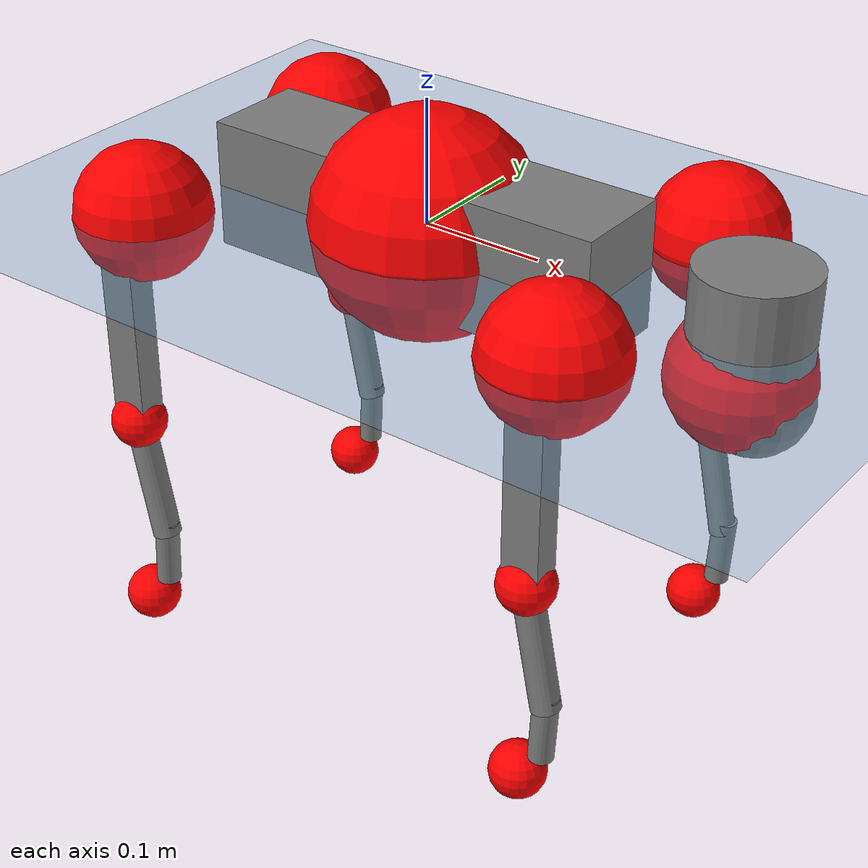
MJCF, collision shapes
<mujoco model="go2">
  <compiler angle="radian" assetdir="assets" balanceinertia="true" inertiafromgeom="false"/>

  <option timestep="0.005" density="1.2" viscosity="2e-05"/>

  <size nkey="1"/>

  <visual>
    <quality shadowsize="8192"/>
    <map shadowclip="0.5"/>
  </visual>

  <default>
    <default class="/">
      <geom contype="0" conaffinity="0" group="1" solref="-1000 -80"/>
      <site size="0.01 0.005 0.005" group="5"/>
      <general forcelimited="true" biastype="affine" gainprm="20" biasprm="0 -20 -0.5"/>
      <default class="go2">
        <joint armature="0.01" damping="0.01" frictionloss="0.2"/>
        <geom condim="1" margin="0.001"/>
        <default class="visual">
          <geom type="mesh" group="2"/>
        </default>
        <default class="collision">
          <geom group="3"/>
          <default class="foot">
            <geom size="0.022 0 0" condim="6" priority="1" friction="0.8 0.02 0.01" solimp="0.015 1 0.022"/>
          </default>
        </default>
        <default class="reward_collision_sphere">
          <geom group="5" rgba="1 0 0 1"/>
        </default>
      </default>
    </default>
  </default>

  <asset>
    <texture type="skybox" colorspace="auto" name="//unnamed_texture_0" builtin="gradient" rgb1="0.95 0.95 0.95" rgb2="0.95 0.95 0.95" width="100" height="600"/>
    <texture type="2d" colorspace="auto" name="texplane" builtin="checker" rgb1="0.345 0.575 0.748" rgb2="0.345 0.575 0.748" markrgb="1 1 1" width="512" height="512"/>
    <material name="MatPlane" class="/" texture="texplane" texuniform="true" texrepeat="2 2" specular="0.9"/>
    <material name="metal" class="/" rgba="0.9 0.95 0.95 1"/>
    <material name="black" class="/" rgba="0 0 0 1"/>
    <material name="white" class="/"/>
    <material name="gray" class="/" rgba="0.671705 0.692426 0.77427 1"/>
    <mesh name="base_0" class="/" file="base_0.obj"/>
    <mesh name="base_1" class="/" file="base_1.obj"/>
    <mesh name="base_2" class="/" file="base_2.obj"/>
    <mesh name="base_3" class="/" file="base_3.obj"/>
    <mesh name="base_4" class="/" file="base_4.obj"/>
    <mesh name="hip_0" class="/" file="hip_0.obj"/>
    <mesh name="hip_1" class="/" file="hip_1.obj"/>
    <mesh name="thigh_0" class="/" file="thigh_0.obj"/>
    <mesh name="thigh_1" class="/" file="thigh_1.obj"/>
    <mesh name="thigh_mirror_0" class="/" file="thigh_mirror_0.obj"/>
    <mesh name="thigh_mirror_1" class="/" file="thigh_mirror_1.obj"/>
    <mesh name="calf_0" class="/" file="calf_0.obj"/>
    <mesh name="calf_1" class="/" file="calf_1.obj"/>
    <mesh name="calf_mirror_0" class="/" file="calf_mirror_0.obj"/>
    <mesh name="calf_mirror_1" class="/" file="calf_mirror_1.obj"/>
    <mesh name="foot" class="/" file="foot.obj"/>
  </asset>

  <worldbody>
    <geom name="floor" class="/" size="100 100 0.125" type="plane" group="0" material="MatPlane"/>
    <light name="toplight_shadow" class="/" pos="0 0 5" dir="0.0990148 0.0990148 -0.990148" type="directional" ambient="0.04 0.04 0.04" diffuse="0.55 0.55 0.55" specular="0.12 0.12 0.12"/>
    <light name="toplight_fill" class="/" pos="0 0 5" dir="0.0990148 0.0990148 -0.990148" type="directional" castshadow="false" ambient="0.04 0.04 0.04" diffuse="0.3 0.3 0.3" specular="0.08 0.08 0.08"/>
    <body name="trunk" childclass="go2" pos="-0.000213779 -3.36584e-05 0.000838992" quat="1 -5.94336e-07 -1.82632e-05 -3.46092e-06">
      <inertial pos="0.0207787 0.000216445 -0.00497623" quat="-0.000529021 0.713369 -0.00170721 0.700786" mass="5.10213" diaginertia="0.0874848 0.0745585 0.00865721"/>
      <joint name="//unnamed_joint_0" type="free" armature="0" damping="0" frictionloss="0"/>
      <geom name="//unnamed_geom_1" class="visual" material="black" mesh="base_0"/>
      <geom name="//unnamed_geom_2" class="visual" material="black" mesh="base_1"/>
      <geom name="//unnamed_geom_3" class="visual" material="black" mesh="base_2"/>
      <geom name="//unnamed_geom_4" class="visual" material="white" mesh="base_3"/>
      <geom name="//unnamed_geom_5" class="visual" material="gray" mesh="base_4"/>
      <geom name="trunk_1" class="collision" size="0.170728 0.0424325 0.0517359" type="box"/>
      <geom name="trunk_2" class="collision" size="0.0453823 0.0408441" pos="0.274324 0 0.00812977" type="cylinder"/>
      <geom name="trunk_3" class="collision" size="0.0426594" pos="0.282025 0 -0.0487786"/>
      <geom name="//unnamed_geom_9" class="reward_collision_sphere" size="0.0907647"/>
      <geom name="//unnamed_geom_10" class="reward_collision_sphere" size="0.0544588" pos="0.269512 0 -0.036584"/>
      <site name="imu" pos="-0.0280069 -0.000992059 0.03375" size="0.00907647"/>
      <camera name="track" pos="0 -1.89484 0" quat="0.707107 0.707107 0 0" mode="trackcom"/>
      <camera name="ego_camera" pos="0.300313 0 0.036584" quat="-0.5 -0.5 0.5 0.5"/>
      <body name="FL_hip" pos="0.186287 0.0438349 0.00221918" quat="1 1.74716e-05 -2.84474e-05 4.21272e-05">
        <inertial pos="-0.00508453 0.00250544 0.00014118" quat="0.500405 0.498675 0.505454 0.495412" mass="0.507521" diaginertia="0.000729839 0.000454685 0.000171004"/>
        <joint name="FL_hip_joint" pos="0 0 0" axis="0.999995 -0.00254531 0.0017474" range="-1.04344 1.03218" armature="0.00923184" damping="0.00187332" frictionloss="0.177666"/>
        <geom name="//unnamed_geom_11" class="visual" material="metal" mesh="hip_0"/>
        <geom name="//unnamed_geom_12" class="visual" material="gray" mesh="hip_1"/>
        <geom name="//unnamed_geom_13" class="collision" size="0.0417517 0.0181529" pos="0 0.0757937 0" quat="0.707107 0.707107 0 0" type="cylinder"/>
        <geom name="//unnamed_geom_14" class="reward_collision_sphere" size="0.0544588" pos="0 0.0663194 0"/>
        <body name="FL_thigh" pos="-0.000370654 0.0893662 0.00161744" quat="1 0.000173806 6.5517e-05 0.000268084">
          <inertial pos="-0.00431995 -0.0210456 -0.0264894" quat="0.830243 0.0837988 -0.0208343 0.550672" mass="0.848409" diaginertia="0.00489207 0.00443999 0.000309239"/>
          <joint name="FL_thigh_joint" pos="0 0 0" axis="-0.000452518 0.999999 0.00115303" stiffness="0.00396166" range="-1.5779 3.50152" armature="0.00924262" damping="0.00542012" frictionloss="0.182601"/>
          <geom name="//unnamed_geom_15" class="visual" material="metal" mesh="thigh_0"/>
          <geom name="//unnamed_geom_16" class="visual" material="gray" mesh="thigh_1"/>
          <geom name="//unnamed_geom_17" class="collision" size="0.0966644 0.0111187 0.01543" pos="0 0 -0.0865821" quat="0.707107 0 0.707107 0" type="box"/>
          <body name="FL_calf" pos="-0.00148197 -0.000847682 -0.173702" quat="1 -0.000115534 0.00012404 0.000310368">
            <inertial pos="0.0057366 -0.000316573 -0.114705" quat="0.711818 0.00195834 -0.00326882 0.702353" mass="0.182742" diaginertia="0.00124427 0.00111941 1.89484e-05"/>
            <joint name="FL_calf_joint" pos="0 0 0" axis="-0.00554125 0.999985 0.000157107" stiffness="0.00206845" range="-2.70617 -0.842647" armature="0.00867534" damping="0.00391362" frictionloss="0.173485"/>
            <geom name="//unnamed_geom_18" class="visual" material="gray" mesh="calf_0"/>
            <geom name="//unnamed_geom_19" class="visual" material="black" mesh="calf_1"/>
            <geom name="FL_calf0" class="collision" size="0.0108918 0.0544588" pos="0.00770034 0 -0.0487786" quat="0.994493 0 -0.104807 0" type="cylinder"/>
            <geom name="//unnamed_geom_21" class="collision" size="0.00998411 0.0294985" pos="0.0192508 0 -0.120321" quat="0.999688 0 0.0249974 0" type="cylinder"/>
            <geom name="//unnamed_geom_22" class="visual" pos="0 0 -0.173164" quat="1 0 0 0" material="black" mesh="foot"/>
            <geom name="FL_foot" class="foot" size="0.0175412" pos="-0.00192508 0 -0.173164"/>
            <geom name="//unnamed_geom_24" class="reward_collision_sphere" size="0.0226912"/>
            <geom name="//unnamed_geom_25" class="reward_collision_sphere" size="0.0226912" pos="-0.00192508 0 -0.173164"/>
            <site name="FL_foot" class="foot" pos="-0.00192508 0 -0.173164" size="0.00907647"/>
          </body>
        </body>
      </body>
      <body name="FR_hip" pos="0.187631 -0.0431262 1.42082e-05" quat="1 -1.24141e-06 -9.02461e-06 5.60558e-06">
        <inertial pos="-0.00518344 -0.00157719 -0.000591934" quat="0.498196 0.50465 0.49986 0.497262" mass="0.498499" diaginertia="0.000726745 0.000444974 0.000168601"/>
        <joint name="FR_hip_joint" pos="0 0 0" axis="0.999998 -0.00164001 0.000652445" stiffness="0.00323424" range="-1.04889 1.05343" armature="0.00918736" damping="0.0137176" frictionloss="0.182428"/>
        <geom name="//unnamed_geom_26" class="visual" pos="0 1.17122e-09 5.02359e-08" quat="4.63268e-05 1 0 0" material="metal" mesh="hip_0"/>
        <geom name="//unnamed_geom_27" class="visual" pos="0 1.89868e-09 -1.24253e-07" quat="4.63268e-05 1 0 0" material="gray" mesh="hip_1"/>
        <geom name="//unnamed_geom_28" class="collision" size="0.0417517 0.0181529" pos="0 -0.0757937 0" quat="0.707107 0.707107 0 0" type="cylinder"/>
        <geom name="//unnamed_geom_29" class="reward_collision_sphere" size="0.0544588" pos="0 -0.0663194 0"/>
        <body name="FR_thigh" pos="0.000863557 -0.0900477 0.00108421" quat="1 -0.000142375 0.000126258 -0.000108713">
          <inertial pos="-0.00344818 0.0214438 -0.0262771" quat="0.55146 -0.0200521 0.0835648 0.829763" mass="0.865668" diaginertia="0.00494526 0.00444572 0.0003123"/>
          <joint name="FR_thigh_joint" pos="0 0 0" axis="0.000163748 -1 -0.000619456" range="-3.47951 1.55332" armature="0.00911916" damping="0.0106886" frictionloss="0.191162"/>
          <geom name="//unnamed_geom_30" class="visual" material="metal" mesh="thigh_mirror_0"/>
          <geom name="//unnamed_geom_31" class="visual" material="gray" mesh="thigh_mirror_1"/>
          <geom name="//unnamed_geom_32" class="collision" size="0.0966644 0.0111187 0.01543" pos="0 0 -0.0865821" quat="0.707107 0 0.707107 0" type="box"/>
          <body name="FR_calf" pos="-0.000234424 -0.000496017 -0.172699" quat="1 -2.66989e-05 9.31093e-05 5.92494e-05">
            <inertial pos="0.00607246 0.00102491 -0.115124" quat="0.704497 -0.0025274 -0.00212112 0.709699" mass="0.17956" diaginertia="0.00122077 0.00112311 1.87779e-05"/>
            <joint name="FR_calf_joint" pos="0 0 0" axis="-0.00260241 -0.999996 -0.00131918" range="0.853578 2.7048" armature="0.00901831" damping="0.00930904" frictionloss="0.177523"/>
            <geom name="//unnamed_geom_33" class="visual" material="gray" mesh="calf_mirror_0"/>
            <geom name="//unnamed_geom_34" class="visual" material="black" mesh="calf_mirror_1"/>
            <geom name="FR_calf0" class="collision" size="0.0117994 0.0544588" pos="0.00962542 0 -0.0487786" quat="0.995004 0 -0.0998334 0" type="cylinder"/>
            <geom name="//unnamed_geom_36" class="collision" size="0.00998411 0.0294985" pos="0.0192508 0 -0.120321" quat="0.999688 0 0.0249974 0" type="cylinder"/>
            <geom name="//unnamed_geom_37" class="visual" pos="0 0 -0.173164" quat="1 0 0 0" material="black" mesh="foot"/>
            <geom name="FR_foot" class="foot" size="0.0203885" pos="-0.00192508 0 -0.173164"/>
            <geom name="//unnamed_geom_39" class="reward_collision_sphere" size="0.0226912"/>
            <geom name="//unnamed_geom_40" class="reward_collision_sphere" size="0.0226912" pos="-0.00192508 0 -0.173164"/>
            <site name="FR_foot" class="foot" pos="-0.00192508 0 -0.173164" size="0.00907647"/>
          </body>
        </body>
      </body>
      <body name="RL_hip" pos="-0.186842 0.0436564 -0.00022083" quat="1 0.000209974 6.77031e-05 -2.74484e-05">
        <inertial pos="0.00465865 0.00233569 -0.000319715" quat="0.501893 0.498164 0.499425 0.50051" mass="0.504417" diaginertia="0.000733384 0.000459581 0.000171407"/>
        <joint name="RL_hip_joint" pos="0 0 0" axis="-0.999795 0.0114981 -0.0166814" range="-1.05032 1.02537" armature="0.00909487" damping="0.0160749" frictionloss="0.183011"/>
        <geom name="//unnamed_geom_41" class="visual" pos="-1.30295e-09 0 -2.55408e-07" quat="4.63268e-05 0 1 0" material="metal" mesh="hip_0"/>
        <geom name="//unnamed_geom_42" class="visual" pos="-2.11223e-09 0 -2.2651e-07" quat="4.63268e-05 0 1 0" material="gray" mesh="hip_1"/>
        <geom name="//unnamed_geom_43" class="collision" size="0.0417517 0.0181529" pos="0 0.0757937 0" quat="0.707107 0.707107 0 0" type="cylinder"/>
        <geom name="//unnamed_geom_44" class="reward_collision_sphere" size="0.0544588" pos="0 0.0663194 0"/>
        <body name="RL_thigh" pos="0.000888202 0.0893944 -0.00105012" quat="1 8.90553e-06 1.00933e-05 -7.82252e-06">
          <inertial pos="-0.00349892 -0.021397 -0.0267782" quat="0.829171 0.0839692 -0.0192938 0.552316" mass="0.860656" diaginertia="0.00491844 0.00450855 0.000312941"/>
          <joint name="RL_thigh_joint" pos="0 0 0" axis="0.0015046 0.999998 0.00111139" range="-0.519362 4.53665" armature="0.00941348" damping="0.0117509" frictionloss="0.180903"/>
          <geom name="//unnamed_geom_45" class="visual" material="metal" mesh="thigh_0"/>
          <geom name="//unnamed_geom_46" class="visual" material="gray" mesh="thigh_1"/>
          <geom name="//unnamed_geom_47" class="collision" size="0.0966644 0.0111187 0.01543" pos="0 0 -0.0865821" quat="0.707107 0 0.707107 0" type="box"/>
          <body name="RL_calf" pos="0.00120346 0.000152631 -0.173067" quat="1 2.44812e-05 0.000199284 -8.87003e-05">
            <inertial pos="0.00610416 -0.00053332 -0.11463" quat="0.711282 -0.000969488 -0.00865475 0.702853" mass="0.180475" diaginertia="0.00122588 0.00111749 1.86954e-05"/>
            <joint name="RL_calf_joint" pos="0 0 0" axis="0.00765578 0.999937 -0.00821769" stiffness="0.000329036" range="-2.71865 -0.834931" armature="0.00936347" damping="0.00263336" frictionloss="0.173597"/>
            <geom name="//unnamed_geom_48" class="visual" material="gray" mesh="calf_0"/>
            <geom name="//unnamed_geom_49" class="visual" material="black" mesh="calf_1"/>
            <geom name="RL_calf0" class="collision" size="0.0117994 0.0544588" pos="0.00962542 0 -0.0487786" quat="0.995004 0 -0.0998334 0" type="cylinder"/>
            <geom name="//unnamed_geom_51" class="collision" size="0.00998411 0.0294985" pos="0.0192508 0 -0.120321" quat="0.999688 0 0.0249974 0" type="cylinder"/>
            <geom name="//unnamed_geom_52" class="visual" pos="0 0 -0.173164" quat="1 0 0 0" material="black" mesh="foot"/>
            <geom name="RL_foot" class="foot" size="0.0181601" pos="-0.00192508 0 -0.173164"/>
            <geom name="//unnamed_geom_54" class="reward_collision_sphere" size="0.0226912"/>
            <geom name="//unnamed_geom_55" class="reward_collision_sphere" size="0.0226912" pos="-0.00192508 0 -0.173164"/>
            <site name="RL_foot" class="foot" pos="-0.00192508 0 -0.173164" size="0.00907647"/>
          </body>
        </body>
      </body>
      <body name="RR_hip" pos="-0.186369 -0.0451693 -0.00185215" quat="1 0.000126672 -0.00014506 -0.000165739">
        <inertial pos="0.0049154 -0.00194848 -0.000232041" quat="0.500381 0.497094 0.496867 0.505609" mass="0.511972" diaginertia="0.000736967 0.000458653 0.000170979"/>
        <joint name="RR_hip_joint" pos="0 0 0" axis="-0.999999 0.00110765 0.000715218" stiffness="0.00247581" range="-1.03939 1.06066" armature="0.00909892" damping="0.00681177" frictionloss="0.180169"/>
        <geom name="//unnamed_geom_56" class="visual" pos="1.30242e-09 1.17122e-09 -3.05644e-07" quat="2.14617e-09 4.63268e-05 4.63268e-05 -1" material="metal" mesh="hip_0"/>
        <geom name="//unnamed_geom_57" class="visual" pos="2.11353e-09 1.89868e-09 -1.02258e-07" quat="2.14617e-09 4.63268e-05 4.63268e-05 -1" material="gray" mesh="hip_1"/>
        <geom name="//unnamed_geom_58" class="collision" size="0.0417517 0.0181529" pos="0 -0.0757937 0" quat="0.707107 0.707107 0 0" type="cylinder"/>
        <geom name="//unnamed_geom_59" class="reward_collision_sphere" size="0.0544588" pos="0 -0.0663194 0"/>
        <body name="RR_thigh" pos="0.000266316 -0.0903935 -0.000943805" quat="1 0.000104678 -0.00024935 -0.000244005">
          <inertial pos="-0.00427915 0.0207829 -0.0261975" quat="0.551522 -0.020059 0.0844842 0.829628" mass="0.84654" diaginertia="0.00487993 0.00440419 0.000310567"/>
          <joint name="RR_thigh_joint" pos="0 0 0" axis="0.00182956 -0.999986 -0.00490745" range="-4.54238 0.521427" armature="0.00922808" damping="0.0162207" frictionloss="0.181027"/>
          <geom name="//unnamed_geom_60" class="visual" material="metal" mesh="thigh_mirror_0"/>
          <geom name="//unnamed_geom_61" class="visual" material="gray" mesh="thigh_mirror_1"/>
          <geom name="//unnamed_geom_62" class="collision" size="0.0966644 0.0111187 0.01543" pos="0 0 -0.0865821" quat="0.707107 0 0.707107 0" type="box"/>
          <body name="RR_calf" pos="0.000676139 -0.00129568 -0.173747" quat="1 0.000135699 0.000248684 -0.000348638">
            <inertial pos="0.00621671 0.000620807 -0.115443" quat="0.702907 -0.00468963 0.00312517 0.71126" mass="0.179885" diaginertia="0.00123996 0.00110722 1.87682e-05"/>
            <joint name="RR_calf_joint" pos="0 0 0" axis="-0.00413947 -0.999991 -0.000522757" range="0.829382 2.72132" armature="0.00885914" damping="0.00842377" frictionloss="0.181834"/>
            <geom name="//unnamed_geom_63" class="visual" material="gray" mesh="calf_mirror_0"/>
            <geom name="//unnamed_geom_64" class="visual" material="black" mesh="calf_mirror_1"/>
            <geom name="RR_calf0" class="collision" size="0.0117994 0.0544588" pos="0.00962542 0 -0.0487786" quat="0.995004 0 -0.0998334 0" type="cylinder"/>
            <geom name="//unnamed_geom_66" class="collision" size="0.00998411 0.0294985" pos="0.0192508 0 -0.120321" quat="0.999688 0 0.0249974 0" type="cylinder"/>
            <geom name="//unnamed_geom_67" class="visual" pos="0 0 -0.173164" quat="1 0 0 0" material="black" mesh="foot"/>
            <geom name="RR_foot" class="foot" size="0.021957" pos="-0.00192508 0 -0.173164"/>
            <geom name="//unnamed_geom_69" class="reward_collision_sphere" size="0.0226912"/>
            <geom name="//unnamed_geom_70" class="reward_collision_sphere" size="0.0226912" pos="-0.00192508 0 -0.173164"/>
            <site name="RR_foot" class="foot" pos="-0.00192508 0 -0.173164" size="0.00907647"/>
          </body>
        </body>
      </body>
    </body>
  </worldbody>

  <contact>
    <pair class="/" geom1="floor" geom2="FL_foot" name="//unnamed_contact_0"/>
    <pair class="/" geom1="floor" geom2="FR_foot" name="//unnamed_contact_1"/>
    <pair class="/" geom1="floor" geom2="RL_foot" name="//unnamed_contact_2"/>
    <pair class="/" geom1="floor" geom2="RR_foot" name="//unnamed_contact_3"/>
  </contact>

  <actuator>
    <general name="FL_hip" class="/" joint="FL_hip_joint" forcerange="-21.2062 21.2062" gainprm="18.4637" biasprm="0 -18.4637 -0.452618"/>
    <general name="FL_thigh" class="/" joint="FL_thigh_joint" forcerange="-22.2786 22.2786" gainprm="18.4637" biasprm="0 -18.4637 -0.452618"/>
    <general name="FL_calf" class="/" joint="FL_calf_joint" forcerange="-40.3649 40.3649" gainprm="18.4637" biasprm="0 -18.4637 -0.452618"/>
    <general name="FR_hip" class="/" joint="FR_hip_joint" forcerange="-22.1993 22.1993" gainprm="18.4637" biasprm="0 -18.4637 -0.452618"/>
    <general name="FR_thigh" class="/" joint="FR_thigh_joint" forcerange="-20.9515 20.9515" gainprm="18.4637" biasprm="0 -18.4637 -0.452618"/>
    <general name="FR_calf" class="/" joint="FR_calf_joint" forcerange="-41.3736 41.3736" gainprm="18.4637" biasprm="0 -18.4637 -0.452618"/>
    <general name="RL_hip" class="/" joint="RL_hip_joint" forcerange="-21.4968 21.4968" gainprm="18.4637" biasprm="0 -18.4637 -0.452618"/>
    <general name="RL_thigh" class="/" joint="RL_thigh_joint" forcerange="-21.6148 21.6148" gainprm="18.4637" biasprm="0 -18.4637 -0.452618"/>
    <general name="RL_calf" class="/" joint="RL_calf_joint" forcerange="-40.4133 40.4133" gainprm="18.4637" biasprm="0 -18.4637 -0.452618"/>
    <general name="RR_hip" class="/" joint="RR_hip_joint" forcerange="-21.5663 21.5663" gainprm="18.4637" biasprm="0 -18.4637 -0.452618"/>
    <general name="RR_thigh" class="/" joint="RR_thigh_joint" forcerange="-21.1577 21.1577" gainprm="18.4637" biasprm="0 -18.4637 -0.452618"/>
    <general name="RR_calf" class="/" joint="RR_calf_joint" forcerange="-41.0529 41.0529" gainprm="18.4637" biasprm="0 -18.4637 -0.452618"/>
  </actuator>

  <sensor>
    <gyro site="imu" name="imu_angular_velocity"/>
    <velocimeter site="imu" name="imu_linear_velocity"/>
    <framelinvel objtype="site" objname="FL_foot" name="FL_foot_global_linear_velocity"/>
    <framelinvel objtype="site" objname="FR_foot" name="FR_foot_global_linear_velocity"/>
    <framelinvel objtype="site" objname="RL_foot" name="RL_foot_global_linear_velocity"/>
    <framelinvel objtype="site" objname="RR_foot" name="RR_foot_global_linear_velocity"/>
  </sensor>

  <keyframe>
    <key name="home" qpos="0 0 0.325 1 0 0 0 0.1 0.8 -1.5 -0.1 -0.8 1.5 -0.1 0.8 -1.5 0.1 -0.8 1.5"/>
  </keyframe>
</mujoco>
